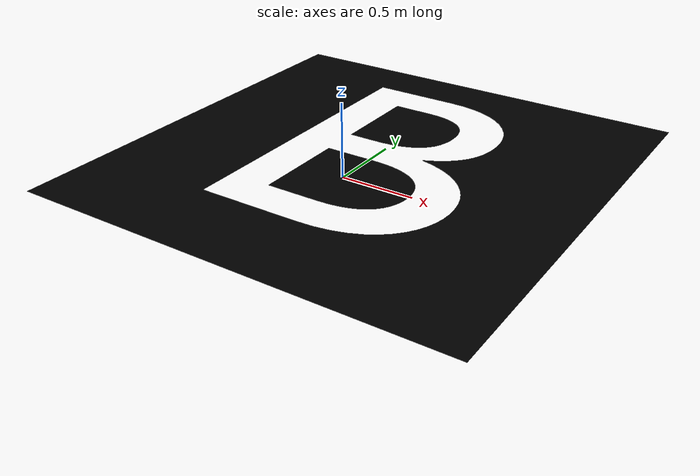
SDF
<?xml version="1.0"?>
<sdf version="1.6">
  <model name="B_letter">
    <static>true</static>
    <link name="plate">
      <inertial>
        <mass>1</mass>
        <inertia>
          <ixx>1</ixx>
          <ixy>0</ixy>
          <ixz>0</ixz>
          <iyy>1</iyy>
          <iyz>0</iyz>
          <izz>1</izz>
        </inertia>
      </inertial>

      <collision name="collision">
        <geometry>
          <box>
            <size>13 3 0.01</size>
          </box>
        </geometry>
      </collision>

      <visual name="visual">
        <geometry>
          <mesh>
            <uri>meshes/B_letter.dae</uri>
          </mesh>
        </geometry>
      </visual>
    </link>
  </model>
</sdf>
